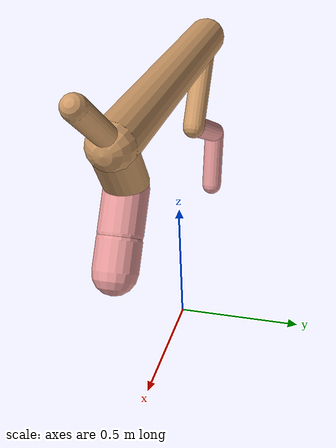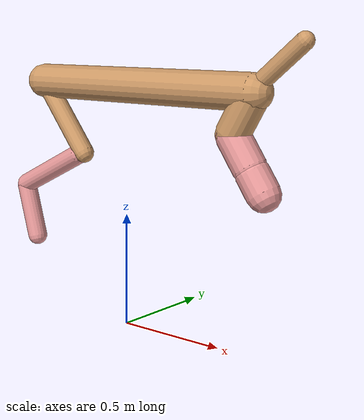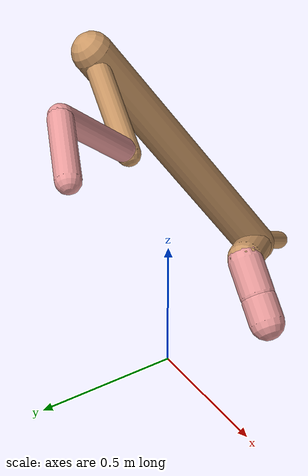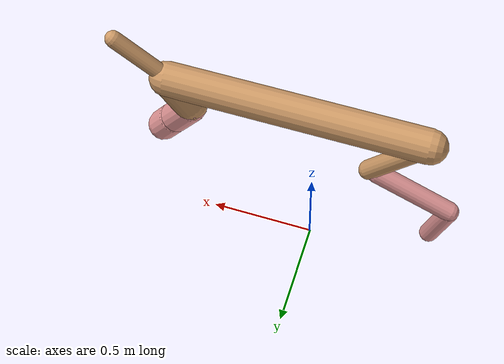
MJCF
<mujoco model="cheetah">
  <compiler angle="radian" coordinate="local" inertiafromgeom="true" settotalmass="14" />
  <default>
    <joint armature=".1" damping=".01" limited="true" solimplimit="0 .8 .03" solreflimit=".02 1" stiffness="8" />
    <geom conaffinity="0" condim="3" contype="1" friction="0.8 .1 .1" rgba="0.8 0.6 .4 1" solimp="0.0 0.8 0.01" solref="0.02 1" />
    <motor ctrllimited="true" ctrlrange="-1 1" />
  </default>
  <size nstack="300000" nuser_geom="1" />
  <option gravity="0 0 -9.81" timestep="0.01" />
  <worldbody>
    <body name="torso" pos="0.0 0.0 1.0675732638248459">
      <joint armature="0" axis="1 0 0" damping="0" limited="false" name="ignorex" pos="0 0 0" stiffness="0" type="slide" />
      <joint armature="0" axis="0 0 1" damping="0" limited="false" name="ignorez" pos="0 0 0" stiffness="0" type="slide" />
      <joint armature="0" axis="0 1 0" damping="0" limited="false" name="ignorey" pos="0 0 0" stiffness="0" type="hinge" />
      <geom fromto="-0.5 0.0 0.0 0.6537880159554265 0.0 0.0" name="torso" size="0.076913552959035" type="capsule" />
      <geom axisangle="0 1 0 .87" name="head" pos="0.7537880159554263 0.0 0.1" size="0.03671822806589503 0.15" type="capsule" />

      <body name="bthigh" pos="-.5 0 0">
        <joint axis="0 1 0" damping="6" name="bthigh" pos="0 0 0" range="-.52 1.05" stiffness="240" type="hinge" />
        <geom axisangle="0 1 0 -3.8" name="bthigh" pos="0.12753935532324107 0.0 -0.16580116192021338" size="0.044812554132026526 0.19016790106322257" type="capsule" />
        <body name="bshin" pos="0.21507871064648215 0.0 -0.32160232384042675">
          <joint axis="0 1 0" damping="4.5" name="bshin" pos="0 0 0" range="-.785 .785" stiffness="180" type="hinge" />
          <geom axisangle="0 1 0 -2.03" name="bshin" pos="-0.1817924815910417 0.0 -0.09089624079552085" rgba="0.9 0.6 0.6 1" size="0.044812554132026526 0.19672541489298886" type="capsule" />
          <body name="bfoot" pos="-0.3635849631820834 0.0 -0.1817924815910417">
            <joint axis="0 1 0" damping="3" name="bfoot" pos="0 0 0" range="-.4 .785" stiffness="120" type="hinge" />
            <geom axisangle="0 1 0 -.27" name="bfoot" pos="0.03865172577889271 0.0 -0.12497391335175312" rgba="0.9 0.6 0.6 1" size="0.044812554132026526 0.12328125999960636" type="capsule" />
            <inertial mass="10" />
          </body>
        </body>
      </body>
      <body name="fthigh" pos="0.6537880159554263 0.0 0.0">
        <joint axis="0 1 0" damping="4.5" name="fthigh" pos="0 0 0" range="-1.5 0.8" stiffness="180" type="hinge" />
        <geom axisangle="0 1 0 .52" name="fthigh" pos="-0.04989554608158897 0.0 -0.0855352218541525" size="0.071170416889739 0.0931" type="capsule" />
        <body name="fshin" pos="-0.09979109216317794 0.0 -0.171070443708305">
          <joint axis="0 1 0" damping="3" name="fshin" pos="0 0 0" range="-1.2 1.1" stiffness="120" type="hinge" />
          <geom axisangle="0 1 0 -.6" name="fshin" pos="0.046381400387749405 0.0 -0.06422040053688378" rgba="0.9 0.6 0.6 1" size="0.071170416889739 0.07419999999999999" type="capsule" />
          <body name="ffoot" pos="0.09276280077549881 0.0 -0.12844080107376757">
            <joint axis="0 1 0" damping="1.5" name="ffoot" pos="0 0 0" range="-3.1 -0.3" stiffness="60" type="hinge" />
            <geom axisangle="0 1 0 -.6" name="ffoot" pos="0.033644090582416526 0.0 -0.05233525201709238" rgba="0.9 0.6 0.6 1" size="0.071170416889739 0.049" type="capsule" />
            <inertial mass="10" />
          </body>
        </body>
      </body>
    </body>
  </worldbody>
  <actuator>
    <motor gear="120" joint="bthigh" name="bthigh" />
    <motor gear="90" joint="bshin" name="bshin" />
    <motor gear="60" joint="bfoot" name="bfoot" />
    <motor gear="120" joint="fthigh" name="fthigh" />
    <motor gear="60" joint="fshin" name="fshin" />
    <motor gear="30" joint="ffoot" name="ffoot" />
  </actuator>
</mujoco>
